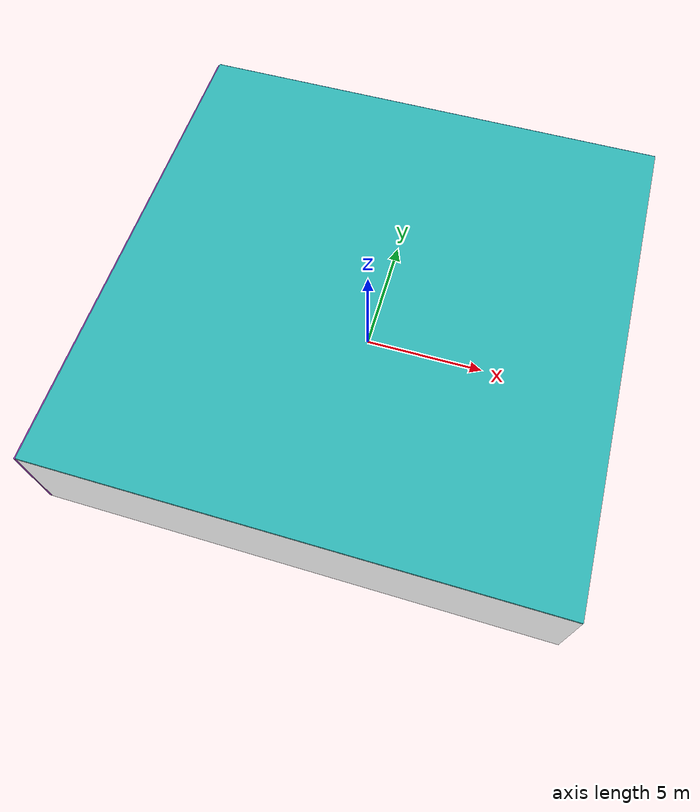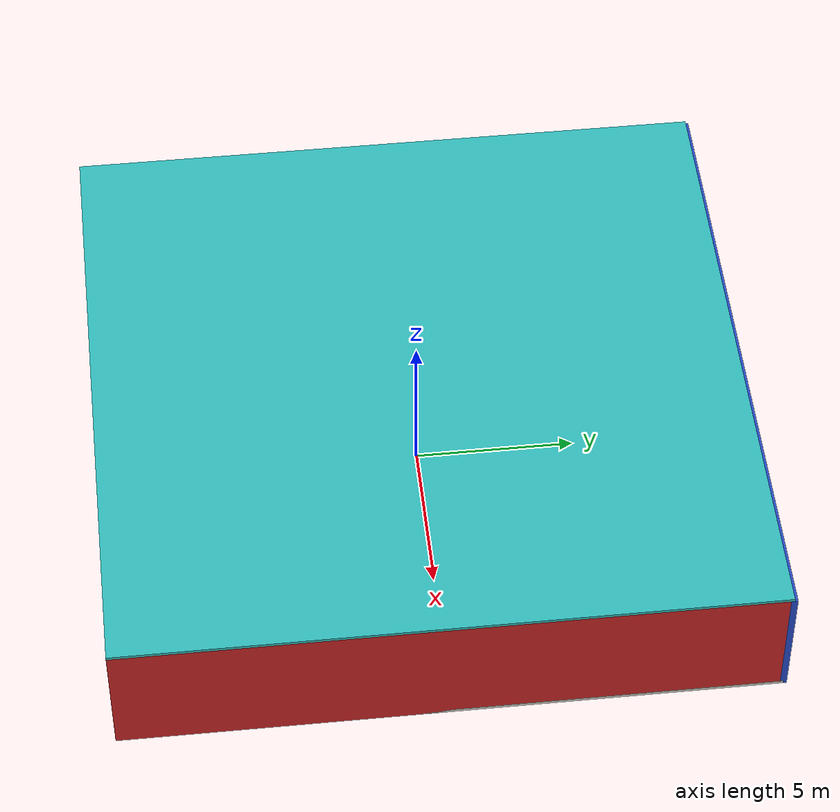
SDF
<sdf version="1.4">
 <world name="default">
  <physics type="ode">
   <max_step_size>0.001</max_step_size>
   <real_time_factor>1</real_time_factor>
   <real_time_update_rate>1000</real_time_update_rate>
   <gravity>0 0 -9.8</gravity>
  </physics>
  <scene><ambient>0.4 0.4 0.4 1</ambient><background>0.7 0.7 0.7 1</background><shadows>1</shadows></scene>
  <model name="Surrounding">
   <static>1</static>
   <link name="Ceiling">
    <collision name="Ceiling_Collision"><geometry><box><size>20 20 0.1</size></box></geometry></collision>
    <visual name="Ceiling_Visual">
     <geometry><box><size>20 20 0.1</size></box></geometry>
     <material>
      <script>
       <uri>file://media/materials/scripts/gazebo.material</uri>
       <name>Gazebo/TurquoiseGlowOutline</name>
      </script>
     </material>
    </visual>
    <pose>0 0 4.05 0 0 0</pose>
   </link>
   <link name="Wall_South">
    <collision name="Wall_South_Collision">
     <geometry><box><size>20 0 4</size></box></geometry>
     <pose>0 0 2 0 -0 0</pose>
    </collision>
    <visual name="Wall_South_Visual">
     <pose>0 0 2 0 -0 0</pose>
     <geometry><box><size>20 0 4</size></box></geometry>
     <material>
      <script><uri>file://media/materials/scripts/gazebo.material</uri><name>Gazebo/WhiteGlow</name></script>
     </material>
    </visual>
    <velocity_decay><linear>0</linear><angular>0</angular></velocity_decay>
    <pose>0 -10 0 0 -0 0</pose>
   </link>
   <link name="Wall_East">
    <collision name="Wall_21_Collision">
     <geometry><box><size>20 0 4</size></box></geometry>
     <pose>0 0 2 0 -0 0</pose>
    </collision>
    <visual name="Wall_21_Visual">
     <pose>0 0 2 0 -0 0</pose>
     <geometry><box><size>20 0 4</size></box></geometry>
     <material>
      <script><uri>file://media/materials/scripts/gazebo.material</uri><name>Gazebo/RedBright</name></script>
     </material>
    </visual>
    <velocity_decay><linear>0</linear><angular>0</angular></velocity_decay>
    <pose>10 0 0 0 -0 1.5708</pose>
   </link>
   <link name="Wall_North">
    <collision name="Wall_22_Collision">
     <geometry><box><size>20 0.2 4</size></box></geometry>
     <pose>0 0 2 0 -0 0</pose>
    </collision>
    <visual name="Wall_22_Visual">
     <pose>0 0 2 0 -0 0</pose>
     <geometry><box><size>20 0.2 4</size></box></geometry>
     <material>
      <script><uri>file://media/materials/scripts/gazebo.material</uri><name>Gazebo/BlueLaser</name></script>
     </material>
    </visual>
    <velocity_decay><linear>0</linear><angular>0</angular></velocity_decay>
    <pose>0 10 0 0 -0 0</pose>
   </link>
   <link name="Wall_West">
    <collision name="Wall_23_Collision">
     <geometry><box><size>20 0.2 4</size></box></geometry>
     <pose>0 0 2 0 -0 0</pose>
    </collision>
    <visual name="Wall_23_Visual">
     <pose>0 0 2 0 -0 0</pose>
     <geometry><box><size>20 0.2 4</size></box></geometry>
     <material>
      <script><uri>file://media/materials/scripts/gazebo.material</uri><name>Gazebo/Purple</name></script>
     </material>
    </visual>
    <velocity_decay><linear>0</linear><angular>0</angular></velocity_decay>
    <pose>-10 0 0 0 0 -1.5708</pose>
   </link>
   <link name="Ground_link">
    <collision name="collision">
     <pose>0 0 .05 0 -0 0</pose>
     <geometry><box><size>20 20 0.1</size></box></geometry>
    </collision>
    <visual name="visual">
     <pose>0 0 .05 0 -0 0</pose>
     <geometry><box><size>20 20 0.1</size></box></geometry>
     <material>
      <script><uri>file://media/materials/scripts/gazebo.material</uri><name>Gazebo/PaintedWall</name></script>
     </material>
    </visual>
   </link>
   <static>1</static>
  </model>
  <spherical_coordinates>
   <surface_model>EARTH_WGS84</surface_model>
   <latitude_deg>0</latitude_deg>
   <longitude_deg>0</longitude_deg>
   <elevation>0</elevation>
   <heading_deg>0</heading_deg>
  </spherical_coordinates>
  <light name="lightball_0" type="diffuse">
   <diffuse>0.8 0.8 0.8 1</diffuse>
   <specular>0.2 0.2 0.2 1</specular>
   <attenuation>
    <range>100</range>
    <constant>0.7</constant>
    <linear>0.01</linear>
    <quadratic>0.001</quadratic>
   </attenuation>
   <direction>-0.5 0.1 -0.9</direction>
   <pose>-3.30956906244 -4.20230556493 3.10926676886 0 0 0</pose>
  </light>
  <light name="lightball_1" type="diffuse">
   <diffuse>0.8 0.8 0.8 1</diffuse>
   <specular>0.2 0.2 0.2 1</specular>
   <attenuation>
    <range>100</range>
    <constant>0.7</constant>
    <linear>0.01</linear>
    <quadratic>0.001</quadratic>
   </attenuation>
   <direction>-0.5 0.1 -0.9</direction>
   <pose>-0.192365920884 -1.59976562253 2.45708236488 0 0 0</pose>
  </light>
  <light name="lightball_2" type="diffuse">
   <diffuse>0.8 0.8 0.8 1</diffuse>
   <specular>0.2 0.2 0.2 1</specular>
   <attenuation>
    <range>100</range>
    <constant>0.7</constant>
    <linear>0.01</linear>
    <quadratic>0.001</quadratic>
   </attenuation>
   <direction>-0.5 0.1 -0.9</direction>
   <pose>-9.0161481611 7.57909387625 3.77902966708 0 0 0</pose>
  </light>
  <light name="lightball_3" type="diffuse">
   <diffuse>0.8 0.8 0.8 1</diffuse>
   <specular>0.2 0.2 0.2 1</specular>
   <attenuation>
    <range>100</range>
    <constant>0.7</constant>
    <linear>0.01</linear>
    <quadratic>0.001</quadratic>
   </attenuation>
   <direction>-0.5 0.1 -0.9</direction>
   <pose>-3.97089323068 -1.76150432396 1.687679108 0 0 0</pose>
  </light>
  <light name="lightball_4" type="diffuse">
   <diffuse>0.8 0.8 0.8 1</diffuse>
   <specular>0.2 0.2 0.2 1</specular>
   <attenuation>
    <range>100</range>
    <constant>0.7</constant>
    <linear>0.01</linear>
    <quadratic>0.001</quadratic>
   </attenuation>
   <direction>-0.5 0.1 -0.9</direction>
   <pose>9.77036239982 -4.07519044951 2.22960428862 0 0 0</pose>
  </light>
  <light name="lightball_5" type="diffuse">
   <diffuse>0.8 0.8 0.8 1</diffuse>
   <specular>0.2 0.2 0.2 1</specular>
   <attenuation>
    <range>100</range>
    <constant>0.7</constant>
    <linear>0.01</linear>
    <quadratic>0.001</quadratic>
   </attenuation>
   <direction>-0.5 0.1 -0.9</direction>
   <pose>8.95586179539 -0.43004893052 1.98296095052 0 0 0</pose>
  </light>
  <include><uri>model://cabinet</uri><pose>-1.19523931436 4.25560227797 0 0 0 2.3462609284</pose></include>
  <include><uri>model://cabinet</uri><pose>1.87841834752 6.74332223056 0 0 0 0.618490686742</pose></include>
  <include>
   <uri>model://construction_cone</uri>
   <pose>4.58656111103 -7.12712116484 0 0 0 0.648247361084</pose>
  </include>
 </world>
</sdf>

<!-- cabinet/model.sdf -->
<sdf version="1.5">
  <model name="cabinet">
    <static>true</static>
    <link name="cabinet_bottom_plate">
      <inertial>
        <pose>0 0 -1 0 0 0</pose>
        <inertia>
          <ixx>2.050000</ixx>
          <ixy>0</ixy>
          <ixz>0</ixz>
          <iyy>2.050000</iyy>
          <iyz>0</iyz>
          <izz>2.050000</izz>
        </inertia>
        <mass>25.000000</mass>
      </inertial>
      <collision name="cabinet_bottom_plate_geom">
        <pose>0 0 0.010000 0 0 0</pose>
        <geometry>
          <box>
            <size>0.450000 0.450000 0.020000</size>
          </box>
        </geometry>
      </collision>
      <visual name="cabinet_bottom_plate_geom_visual">
        <pose>0 0 0.010000 0 0 0</pose>
        <geometry>
          <box>
            <size>0.450000 0.450000 0.020000</size>
          </box>
        </geometry>
        <material>
          <script>
            <uri>model://media/materials/scripts/gazebo.material</uri>
            <name>Gazebo/Wood</name>
          </script>
        </material>
      </visual>
      <collision name="cabinet_bottom_plate_geom_cabinet_back_plate">
        <pose>0.235000 0 0.510000 0 0 0</pose>
        <geometry>
          <box>
            <size>0.020000 0.450000 1.020000</size>
          </box>
        </geometry>
      </collision>
      <visual name="cabinet_bottom_plate_geom_cabinet_back_plate_visual">
        <pose>0.235000 0 0.510000 0 0 0</pose>
        <geometry>
          <box>
            <size>0.020000 0.450000 1.020000</size>
          </box>
        </geometry>
        <material>
          <script>
            <uri>model://media/materials/scripts/gazebo.material</uri>
            <name>Gazebo/Wood</name>
          </script>
        </material>
      </visual>
      <collision name="cabinet_bottom_plate_geom_cabinet_left_plate">
        <pose>0 0.235000 0.510000 0 0 0</pose>
        <geometry>
          <box>
            <size>0.450000 0.020000 1.020000</size>
          </box>
        </geometry>
      </collision>
      <visual name="cabinet_bottom_plate_geom_cabinet_left_plate_visual">
        <pose>0 0.235000 0.510000 0 0 0</pose>
        <geometry>
          <box>
            <size>0.450000 0.020000 1.020000</size>
          </box>
        </geometry>
        <material>
          <script>
            <uri>model://media/materials/scripts/gazebo.material</uri>
            <name>Gazebo/Wood</name>
          </script>
        </material>
      </visual>
      <collision name="cabinet_bottom_plate_geom_cabinet_middle_plate">
        <pose>0 0 0.510000 0 0 0</pose>
        <geometry>
          <box>
            <size>0.450000 0.450000 0.020000</size>
          </box>
        </geometry>
      </collision>
      <visual name="cabinet_bottom_plate_geom_cabinet_middle_plate_visual">
        <pose>0 0 0.510000 0 0 0</pose>
        <geometry>
          <box>
            <size>0.450000 0.450000 0.020000</size>
          </box>
        </geometry>
        <material>
          <script>
            <uri>model://media/materials/scripts/gazebo.material</uri>
            <name>Gazebo/Wood</name>
          </script>
        </material>
      </visual>
      <collision name="cabinet_bottom_plate_geom_cabinet_right_plate">
        <pose>0 -0.235000 0.510000 0 0 0</pose>
        <geometry>
          <box>
            <size>0.450000 0.020000 1.020000</size>
          </box>
        </geometry>
      </collision>
      <visual name="cabinet_bottom_plate_geom_cabinet_right_plate_visual">
        <pose>0 -0.235000 0.510000 0 0 0</pose>
        <geometry>
          <box>
            <size>0.450000 0.020000 1.020000</size>
          </box>
        </geometry>
        <material>
          <script>
            <uri>model://media/materials/scripts/gazebo.material</uri>
            <name>Gazebo/Wood</name>
          </script>
        </material>
      </visual>
      <collision name="cabinet_bottom_plate_geom_cabinet_top_plate">
        <pose>0 0 1.010000 0 0 0</pose>
        <geometry>
          <box>
            <size>0.450000 0.450000 0.020000</size>
          </box>
        </geometry>
      </collision>
      <visual name="cabinet_bottom_plate_geom_cabinet_top_plate_visual">
        <pose>0 0 1.010000 0 0 0</pose>
        <geometry>
          <box>
            <size>0.450000 0.450000 0.020000</size>
          </box>
        </geometry>
        <material>
          <script>
            <uri>model://media/materials/scripts/gazebo.material</uri>
            <name>Gazebo/Wood</name>
          </script>
        </material>
      </visual>
    </link>
  </model>
</sdf>

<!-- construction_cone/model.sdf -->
<sdf version="1.5">
  <model name="Construction Cone">
    <link name="link">
      <collision name="collision">
        <geometry>
          <mesh>
            <scale>10 10 10</scale>
            <uri>file://isr-testbed/construction_cone/meshes/construction_cone.dae</uri>
          </mesh>
        </geometry>
      </collision>
      <visual name="visual">
        <geometry>
          <mesh>
            <scale>10 10 10</scale>
            <uri>file://isr-testbed/construction_cone/meshes/construction_cone.dae</uri>
          </mesh>
        </geometry>
      </visual>
    </link>
  </model>
</sdf>
